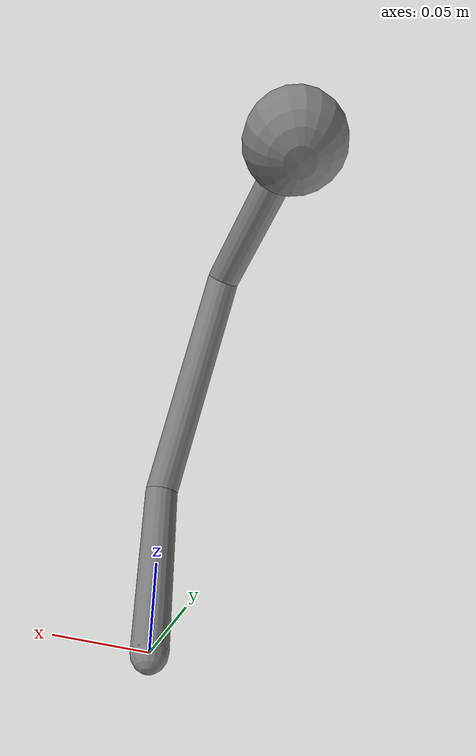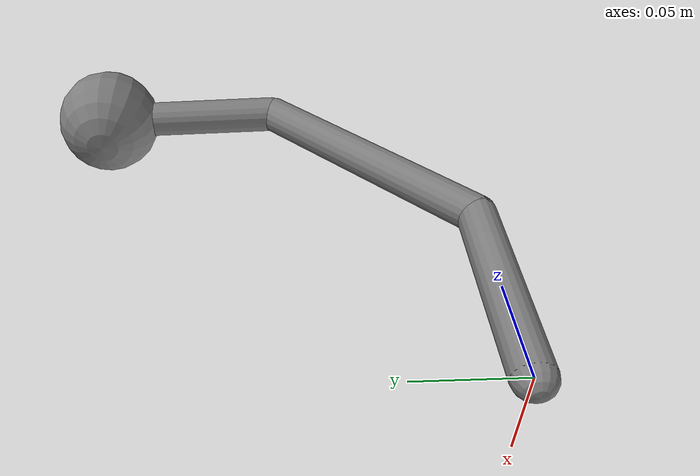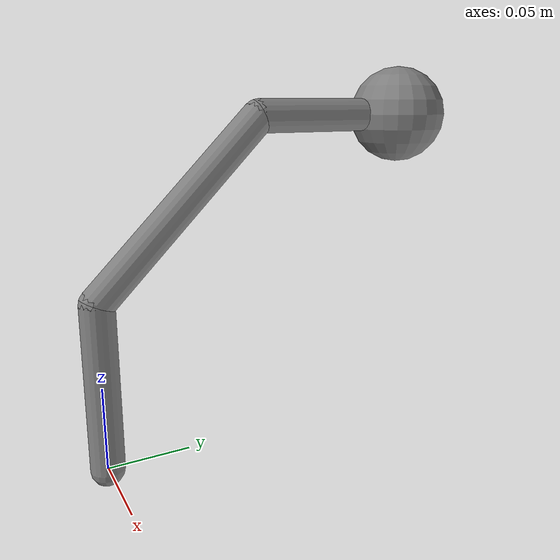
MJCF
<mujoco>
  <default>
    <geom type='capsule' size='0.01'/>
    <site type='sphere' size='0.03'/>
    <joint type='ball' damping='0.005'/>
  </default>
  <worldbody>
    <body>
      <geom fromto='0 0 0 0 0 0.1'/>
      <body pos='0 0 0.1'>
        <geom fromto='0 0 0 0 0.1 0.1'/>
        <joint name='joint_1'/>
        <body pos='0 0.1 0.1'>
          <geom fromto='0 0 0 0 0.1 0.0'/>
          <joint name='joint_2'/>
          <site name='gripsite' pos='0 0.1 0'/>
        </body>
      </body>
    </body>
  </worldbody>
</mujoco>
